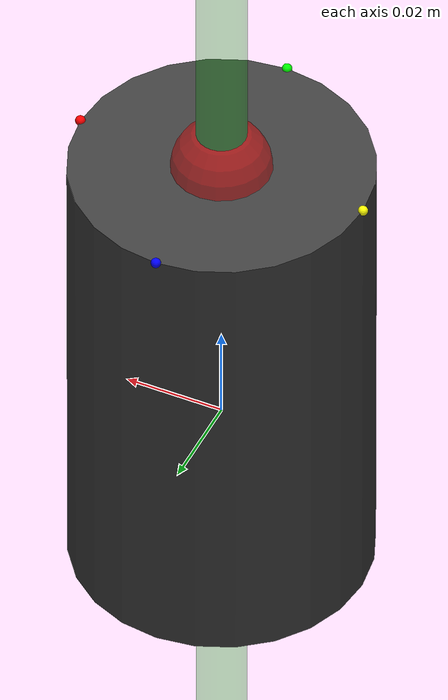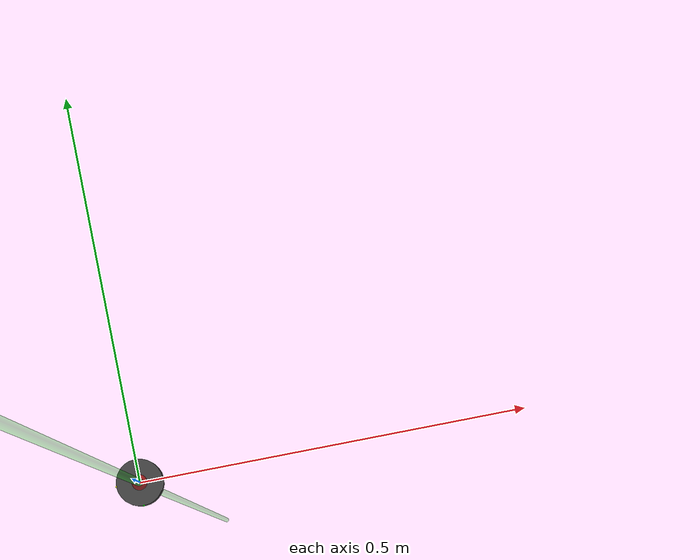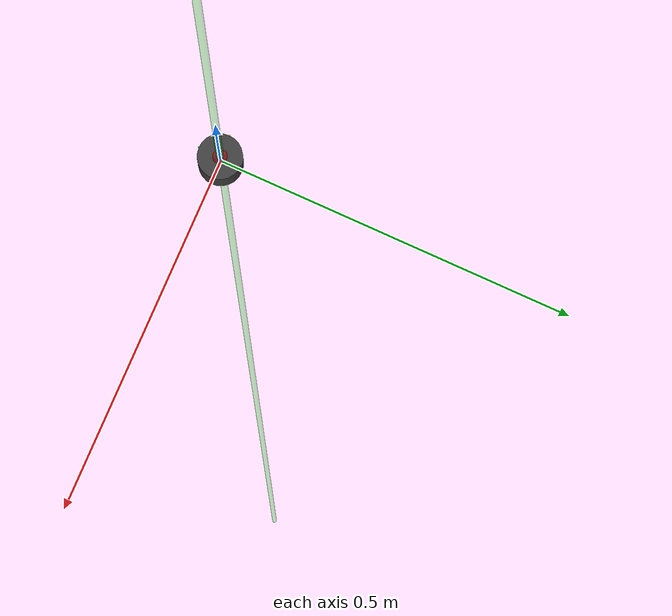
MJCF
<mujoco model="wiping_hand">
    <worldbody>
        <body name="wiping_gripper" pos="0 0 0.015" quat="0.707107 0 0 -0.707107" >
            <site name="ft_frame" pos="0 0 0" size="0.0001" rgba="1 1 0 0" type="sphere" group="1"/>
            <inertial pos="0 0 0" mass="3e-2" diaginertia="1e-2 1e-2 1e-2"/>

            <geom type="cylinder" pos="0 0 0.0" size="0.03 0.05" name="wiping_surface_vis" contype="1" group="1" solimp="0.2 0.9 0.01" solmix="10000" solref="0.05 1" rgba="0.25 0.25 0.25 1" />
            <geom type="sphere" group="0" pos="0 0.03 0.05" size="0.001" name="wiping_corner1" solimp="0.0 0.1 0.01" solmix="10000" solref="1 2" rgba="1 0 0 1" friction="0.001 0.005 0.0001"/>

            <site type="sphere" rgba="1 0 0 1" pos="0 0.03 0.05" size="0.001" name="wiping_corner1_site"/>

            <geom type="sphere" group="0" pos="0.03 0.0 0.05" size="0.001" name="wiping_corner2" solimp="0.0 0.1 0.01" solmix="10000" solref="1 2" rgba="0 1 0 1" friction="0.001 0.005 0.0001"/>
            <site type="sphere" rgba="0 1 0 1" pos="0.03 0.0 0.05" size="0.001" name="wiping_corner2_site"/>

            <geom type="sphere" group="0" pos="-0.03 0.0 0.05 " size="0.001" name="wiping_corner3" solimp="0.0 0.1 0.01" solmix="10000" solref="1 2" rgba="0 0 1 1" friction="0.001 0.005 0.0001"/>
            <site type="sphere" rgba="0 0 1 1" pos="-0.03 0.0 0.05 " size="0.001" name="wiping_corner3_site"/>

            <geom type="sphere" group="0" pos="0.0 -0.03 0.05" size="0.001" name="wiping_corner4" solimp="0.0 0.1 0.01" solmix="10000" solref="1 2" rgba="1 1 0 1" friction="0.001 0.005 0.0001"/>
            <site type="sphere" rgba="1 1 0 1" pos="0.0 -0.03 0.05" size="0.001" name="wiping_corner4_site"/>

            <!-- < This site was added for visualization import to match pos with geometry above> -->
            <body name="eef" pos="0 0 0.05" quat="1 0 0 0">
                <site name="grip_site" pos="0 0 0" size="0.01 0.01 0.01" rgba="1 0 0 0.5" type="sphere" group="1"/>
                <site name="ee_x" pos="0.1 0 0" size="0.005 .1"  quat="0.707105  0 0.707108 0 " rgba="1 0 0 0" type="cylinder" group="1"/>
                <site name="ee_y" pos="0 0.1 0" size="0.005 .1" quat="0.707105 0.707108 0 0" rgba="0 1 0 0" type="cylinder" group="1"/>
                <site name="ee_z" pos="0 0 0.1" size="0.005 .1" quat="1 0 0 0" rgba="0 0 1 0" type="cylinder" group="1"/>
                <!-- This site was added for visualization. -->
                <site name="grip_site_cylinder" pos="0 0 0" size="0.005 10" rgba="0 1 0 0.3" type="cylinder" group="1"/>
            </body>
        </body>
    </worldbody>
    <sensor>
        <force name="force_ee" site="ft_frame"/>
        <torque name="torque_ee" site="ft_frame"/>
        <touch name="touch1" site="wiping_corner1_site"/>
        <touch name="touch2" site="wiping_corner2_site"/>
        <touch name="touch3" site="wiping_corner3_site"/>
        <touch name="touch4" site="wiping_corner4_site"/>
    </sensor>
</mujoco>
